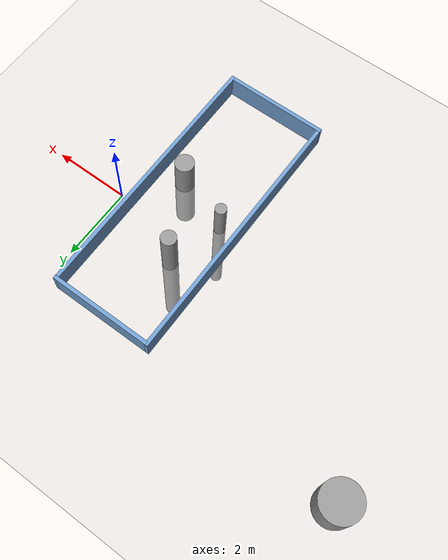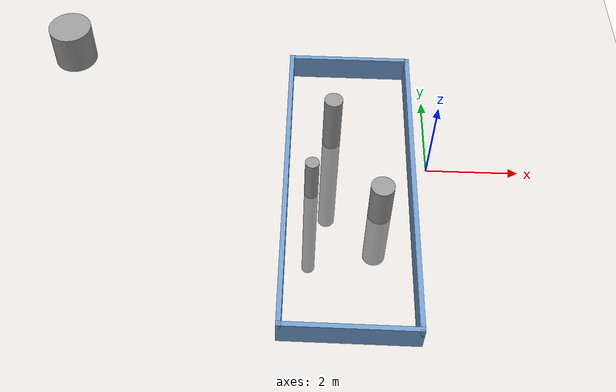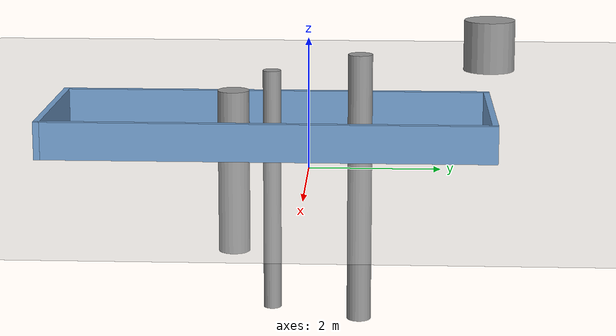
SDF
<sdf version="1.6">
 <world name="default">
  <light name="sun" type="directional">
   <pose>0 0 10 0 -0 0</pose>
   <diffuse>0.8 0.8 0.8 1</diffuse>
   <specular>0.2 0.2 0.2 1</specular>
   <attenuation>
    <range>1000</range>
    <constant>0.9</constant>
    <linear>0.01</linear>
    <quadratic>0.001</quadratic>
   </attenuation>
   <direction>-0.5 0.1 -0.9</direction>
  </light>
  <model name="ground_plane">
   <static>1</static>
   <link name="link">
    <collision name="collision">
     <geometry><plane><normal>0 0 1</normal><size>100 100</size></plane></geometry>
     <surface>
      <contact><collide_bitmask>65535</collide_bitmask></contact>
      <friction><ode><mu>100</mu><mu2>50</mu2></ode></friction>
     </surface>
    </collision>
    <visual name="visual">
     <cast_shadows>0</cast_shadows>
     <geometry><plane><normal>0 0 1</normal><size>100 100</size></plane></geometry>
     <material>
      <script><uri>file://media/materials/scripts/gazebo.material</uri><name>Gazebo/Grey</name></script>
     </material>
    </visual>
   </link>
  </model>
  <gravity>0 0 -9.8</gravity>
  <magnetic_field>6e-06 2.3e-05 -4.2e-05</magnetic_field>
  <atmosphere type="adiabatic"/>
  <physics name="default_physics" default="0" type="ode">
   <max_step_size>0.001</max_step_size>
   <real_time_factor>1</real_time_factor>
   <real_time_update_rate>1000</real_time_update_rate>
  </physics>
  <scene><ambient>0.4 0.4 0.4 1</ambient><background>0.7 0.7 0.7 1</background><shadows>1</shadows></scene>
  <audio><device>default</device></audio>
  <spherical_coordinates>
   <surface_model>EARTH_WGS84</surface_model>
   <latitude_deg>0</latitude_deg>
   <longitude_deg>0</longitude_deg>
   <elevation>0</elevation>
   <heading_deg>0</heading_deg>
  </spherical_coordinates>
  <model name="Wall_Constraint">
   <pose>-1.72004 -0.702086 0 0 -0 0</pose>
   <link name="Wall_0">
    <collision name="Wall_0_Collision">
     <geometry><box><size>7.19 0.1 0.6</size></box></geometry>
     <pose>0 0 0.3 0 -0 0</pose>
    </collision>
    <visual name="Wall_0_Visual">
     <pose>0 0 0.3 0 -0 0</pose>
     <geometry><box><size>7.19 0.1 0.6</size></box></geometry>
     <material>
      <script><uri>file://media/materials/scripts/gazebo.material</uri><name>Gazebo/Grey</name></script>
      <ambient>0.447059 0.623529 0.811765 1</ambient>
     </material>
     <meta><layer>0</layer></meta>
    </visual>
    <pose>1.35 0 0 0 -0 -1.5708</pose>
   </link>
   <link name="Wall_2">
    <collision name="Wall_2_Collision">
     <geometry><box><size>2.8 0.1 0.6</size></box></geometry>
     <pose>0 0 0.3 0 -0 0</pose>
    </collision>
    <visual name="Wall_2_Visual">
     <pose>0 0 0.3 0 -0 0</pose>
     <geometry><box><size>2.8 0.1 0.6</size></box></geometry>
     <material>
      <script><uri>file://media/materials/scripts/gazebo.material</uri><name>Gazebo/Grey</name></script>
      <ambient>0.447059 0.623529 0.811765 1</ambient>
     </material>
     <meta><layer>0</layer></meta>
    </visual>
    <pose>0 3.545 0 0 -0 0</pose>
   </link>
   <link name="Wall_4">
    <collision name="Wall_4_Collision">
     <geometry><box><size>7.19 0.1 0.6</size></box></geometry>
     <pose>0 0 0.3 0 -0 0</pose>
    </collision>
    <visual name="Wall_4_Visual">
     <pose>0 0 0.3 0 -0 0</pose>
     <geometry><box><size>7.19 0.1 0.6</size></box></geometry>
     <material>
      <script><uri>file://media/materials/scripts/gazebo.material</uri><name>Gazebo/Grey</name></script>
      <ambient>0.447059 0.623529 0.811765 1</ambient>
     </material>
     <meta><layer>0</layer></meta>
    </visual>
    <pose>-1.35 0 0 0 -0 1.5708</pose>
   </link>
   <link name="Wall_6">
    <collision name="Wall_6_Collision">
     <geometry><box><size>2.8 0.1 0.6</size></box></geometry>
     <pose>0 0 0.3 0 -0 0</pose>
    </collision>
    <visual name="Wall_6_Visual">
     <pose>0 0 0.3 0 -0 0</pose>
     <geometry><box><size>2.8 0.1 0.6</size></box></geometry>
     <material>
      <script><uri>file://media/materials/scripts/gazebo.material</uri><name>Gazebo/Grey</name></script>
      <ambient>0.447059 0.623529 0.811765 1</ambient>
     </material>
     <meta><layer>0</layer></meta>
    </visual>
    <pose>0 -3.545 0 0 -0 0</pose>
   </link>
   <static>1</static>
  </model>
  <model name="Rocks_Better4">
   <link name="link_0">
    <inertial>
     <mass>4.48082</mass>
     <inertia>
      <ixx>7.54219</ixx>
      <ixy>0</ixy>
      <ixz>0</ixz>
      <iyy>7.54219</iyy>
      <iyz>0</iyz>
      <izz>0.0896163</izz>
     </inertia>
    </inertial>
    <pose>-1.23477 -0.29475 -3.37055 -0.271373 -0.163509 2.22854</pose>
    <gravity>0</gravity>
    <visual name="visual">
     <geometry><cylinder><radius>0.2</radius><length>4.48091</length></cylinder></geometry>
     <material>
      <lighting>1</lighting>
      <script><uri>file://media/materials/scripts/gazebo.material</uri><name>Gazebo/Grey</name></script>
      <shader type="vertex"><normal_map>__default__</normal_map></shader>
      <ambient>0.3 0.3 0.3 1</ambient>
      <diffuse>0.7 0.7 0.7 1</diffuse>
      <specular>0.01 0.01 0.01 1</specular>
      <emissive>0 0 0 1</emissive>
     </material>
    </visual>
    <collision name="collision">
     <geometry><cylinder><radius>0.2</radius><length>4.48091</length></cylinder></geometry>
     <surface>
      <friction>
       <ode><mu>1</mu><mu2>1</mu2><fdir1>0 0 0</fdir1><slip1>0</slip1><slip2>0</slip2></ode>
       <torsional>
        <coefficient>1</coefficient>
        <patch_radius>0</patch_radius>
        <surface_radius>0</surface_radius>
        <use_patch_radius>1</use_patch_radius>
        <ode><slip>0</slip></ode>
       </torsional>
      </friction>
      <bounce><restitution_coefficient>0</restitution_coefficient><threshold>1e+06</threshold></bounce>
      <contact>
       <collide_without_contact>0</collide_without_contact>
       <collide_without_contact_bitmask>1</collide_without_contact_bitmask>
       <collide_bitmask>1</collide_bitmask>
       <ode>
        <soft_cfm>0</soft_cfm>
        <soft_erp>0.2</soft_erp>
        <kp>1e+13</kp>
        <kd>1</kd>
        <max_vel>0.01</max_vel>
        <min_depth>0</min_depth>
       </ode>
       <bullet>
        <split_impulse>1</split_impulse>
        <split_impulse_penetration_threshold>-0.01</split_impulse_penetration_threshold>
        <soft_cfm>0</soft_cfm>
        <soft_erp>0.2</soft_erp>
        <kp>1e+13</kp>
        <kd>1</kd>
       </bullet>
      </contact>
     </surface>
    </collision>
   </link>
   <link name="link_0_0">
    <inertial>
     <mass>1</mass>
     <inertia><ixx>0.145833</ixx><ixy>0</ixy><ixz>0</ixz><iyy>0.145833</iyy><iyz>0</iyz><izz>0.125</izz></inertia>
    </inertial>
    <pose>0.4696 -6.95738 -3.76354 -0.271373 -0.163509 2.22854</pose>
    <gravity>0</gravity>
    <visual name="visual">
     <geometry><cylinder><radius>0.5</radius><length>1</length></cylinder></geometry>
     <material>
      <lighting>1</lighting>
      <script><uri>file://media/materials/scripts/gazebo.material</uri><name>Gazebo/Grey</name></script>
      <shader type="vertex"><normal_map>__default__</normal_map></shader>
      <ambient>0.3 0.3 0.3 1</ambient>
      <diffuse>0.7 0.7 0.7 1</diffuse>
      <specular>0.01 0.01 0.01 1</specular>
      <emissive>0 0 0 1</emissive>
     </material>
    </visual>
    <collision name="collision">
     <geometry><cylinder><radius>0.5</radius><length>1</length></cylinder></geometry>
     <surface>
      <friction>
       <ode><mu>1</mu><mu2>1</mu2><fdir1>0 0 0</fdir1><slip1>0</slip1><slip2>0</slip2></ode>
       <torsional>
        <coefficient>1</coefficient>
        <patch_radius>0</patch_radius>
        <surface_radius>0</surface_radius>
        <use_patch_radius>1</use_patch_radius>
        <ode><slip>0</slip></ode>
       </torsional>
      </friction>
      <bounce><restitution_coefficient>0</restitution_coefficient><threshold>1e+06</threshold></bounce>
      <contact>
       <collide_without_contact>0</collide_without_contact>
       <collide_without_contact_bitmask>1</collide_without_contact_bitmask>
       <collide_bitmask>1</collide_bitmask>
       <ode>
        <soft_cfm>0</soft_cfm>
        <soft_erp>0.2</soft_erp>
        <kp>1e+13</kp>
        <kd>1</kd>
        <max_vel>0.01</max_vel>
        <min_depth>0</min_depth>
       </ode>
       <bullet>
        <split_impulse>1</split_impulse>
        <split_impulse_penetration_threshold>-0.01</split_impulse_penetration_threshold>
        <soft_cfm>0</soft_cfm>
        <soft_erp>0.2</soft_erp>
        <kp>1e+13</kp>
        <kd>1</kd>
       </bullet>
      </contact>
     </surface>
    </collision>
   </link>
   <link name="link_1">
    <inertial>
     <mass>2.61061</mass>
     <inertia>
      <ixx>1.52413</ixx>
      <ixy>0</ixy>
      <ixz>0</ixz>
      <iyy>1.52413</iyy>
      <iyz>0</iyz>
      <izz>0.0815816</izz>
     </inertia>
    </inertial>
    <pose>-0.361559 1.4665 -2.17203 -0.271373 -0.163509 2.22854</pose>
    <gravity>0</gravity>
    <visual name="visual">
     <geometry><cylinder><radius>0.25</radius><length>2.61121</length></cylinder></geometry>
     <material>
      <lighting>1</lighting>
      <script><uri>file://media/materials/scripts/gazebo.material</uri><name>Gazebo/Grey</name></script>
      <shader type="vertex"><normal_map>__default__</normal_map></shader>
      <ambient>0.3 0.3 0.3 1</ambient>
      <diffuse>0.7 0.7 0.7 1</diffuse>
      <specular>0.01 0.01 0.01 1</specular>
      <emissive>0 0 0 1</emissive>
     </material>
    </visual>
    <collision name="collision">
     <geometry><cylinder><radius>0.25</radius><length>2.6112</length></cylinder></geometry>
     <surface>
      <friction>
       <ode><mu>1</mu><mu2>1</mu2><fdir1>0 0 0</fdir1><slip1>0</slip1><slip2>0</slip2></ode>
       <torsional>
        <coefficient>1</coefficient>
        <patch_radius>0</patch_radius>
        <surface_radius>0</surface_radius>
        <use_patch_radius>1</use_patch_radius>
        <ode><slip>0</slip></ode>
       </torsional>
      </friction>
      <bounce><restitution_coefficient>0</restitution_coefficient><threshold>1e+06</threshold></bounce>
      <contact>
       <collide_without_contact>0</collide_without_contact>
       <collide_without_contact_bitmask>1</collide_without_contact_bitmask>
       <collide_bitmask>1</collide_bitmask>
       <ode>
        <soft_cfm>0</soft_cfm>
        <soft_erp>0.2</soft_erp>
        <kp>1e+13</kp>
        <kd>1</kd>
        <max_vel>0.01</max_vel>
        <min_depth>0</min_depth>
       </ode>
       <bullet>
        <split_impulse>1</split_impulse>
        <split_impulse_penetration_threshold>-0.01</split_impulse_penetration_threshold>
        <soft_cfm>0</soft_cfm>
        <soft_erp>0.2</soft_erp>
        <kp>1e+13</kp>
        <kd>1</kd>
       </bullet>
      </contact>
     </surface>
    </collision>
   </link>
   <link name="link_2">
    <inertial>
     <mass>4.08063</mass>
     <inertia>
      <ixx>5.68523</ixx>
      <ixy>0</ixy>
      <ixz>0</ixz>
      <iyy>5.68523</iyy>
      <iyz>0</iyz>
      <izz>0.0459071</izz>
     </inertia>
    </inertial>
    <pose>0.194157 0.236261 -3.19219 -0.271373 -0.163509 2.22854</pose>
    <gravity>0</gravity>
    <visual name="visual">
     <geometry><cylinder><radius>0.15</radius><length>4.08059</length></cylinder></geometry>
     <material>
      <lighting>1</lighting>
      <script><uri>file://media/materials/scripts/gazebo.material</uri><name>Gazebo/Grey</name></script>
      <shader type="vertex"><normal_map>__default__</normal_map></shader>
      <ambient>0.3 0.3 0.3 1</ambient>
      <diffuse>0.7 0.7 0.7 1</diffuse>
      <specular>0.01 0.01 0.01 1</specular>
      <emissive>0 0 0 1</emissive>
     </material>
    </visual>
    <collision name="collision">
     <geometry><cylinder><radius>0.15</radius><length>4.08059</length></cylinder></geometry>
     <surface>
      <friction>
       <ode><mu>1</mu><mu2>1</mu2><fdir1>0 0 0</fdir1><slip1>0</slip1><slip2>0</slip2></ode>
       <torsional>
        <coefficient>1</coefficient>
        <patch_radius>0</patch_radius>
        <surface_radius>0</surface_radius>
        <use_patch_radius>1</use_patch_radius>
        <ode><slip>0</slip></ode>
       </torsional>
      </friction>
      <bounce><restitution_coefficient>0</restitution_coefficient><threshold>1e+06</threshold></bounce>
      <contact>
       <collide_without_contact>0</collide_without_contact>
       <collide_without_contact_bitmask>1</collide_without_contact_bitmask>
       <collide_bitmask>1</collide_bitmask>
       <ode>
        <soft_cfm>0</soft_cfm>
        <soft_erp>0.2</soft_erp>
        <kp>1e+13</kp>
        <kd>1</kd>
        <max_vel>0.01</max_vel>
        <min_depth>0</min_depth>
       </ode>
       <bullet>
        <split_impulse>1</split_impulse>
        <split_impulse_penetration_threshold>-0.01</split_impulse_penetration_threshold>
        <soft_cfm>0</soft_cfm>
        <soft_erp>0.2</soft_erp>
        <kp>1e+13</kp>
        <kd>1</kd>
       </bullet>
      </contact>
     </surface>
    </collision>
   </link>
   <static>0</static>
   <pose>-2.07166 -1.28499 2.12848 -0.294168 0.116522 -2.22345</pose>
  </model>
 </world>
</sdf>
